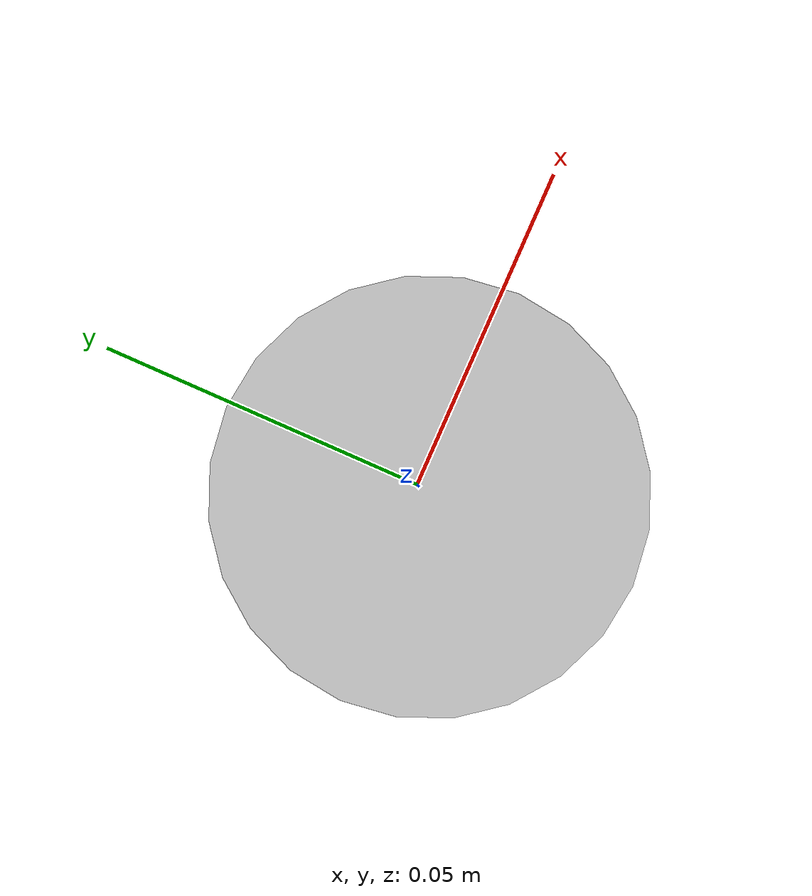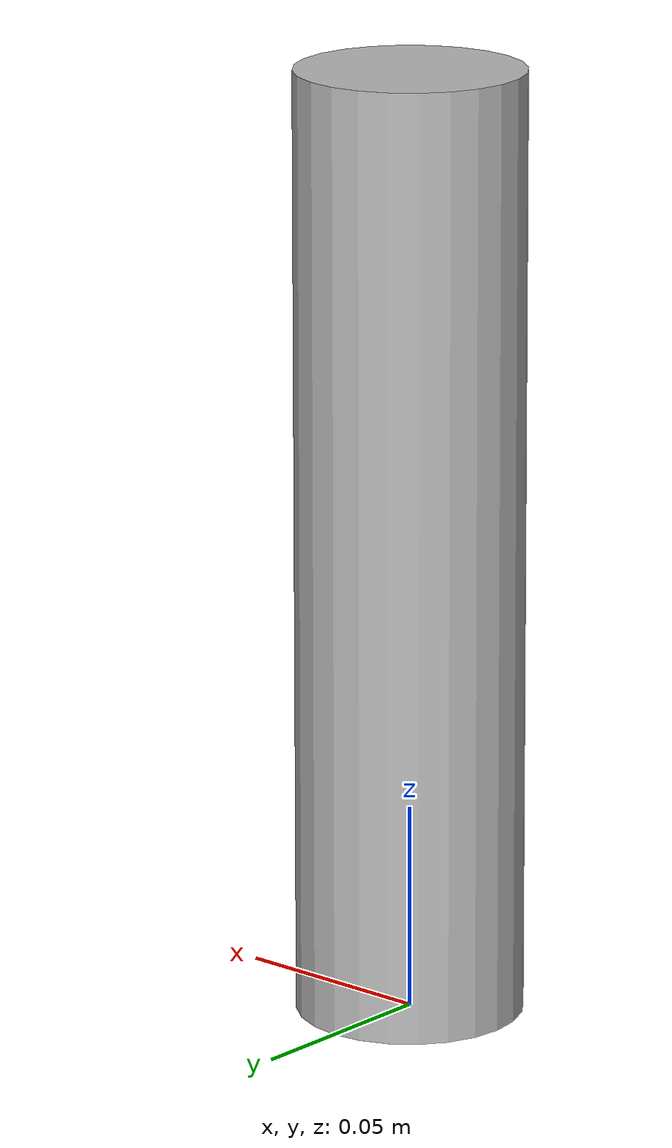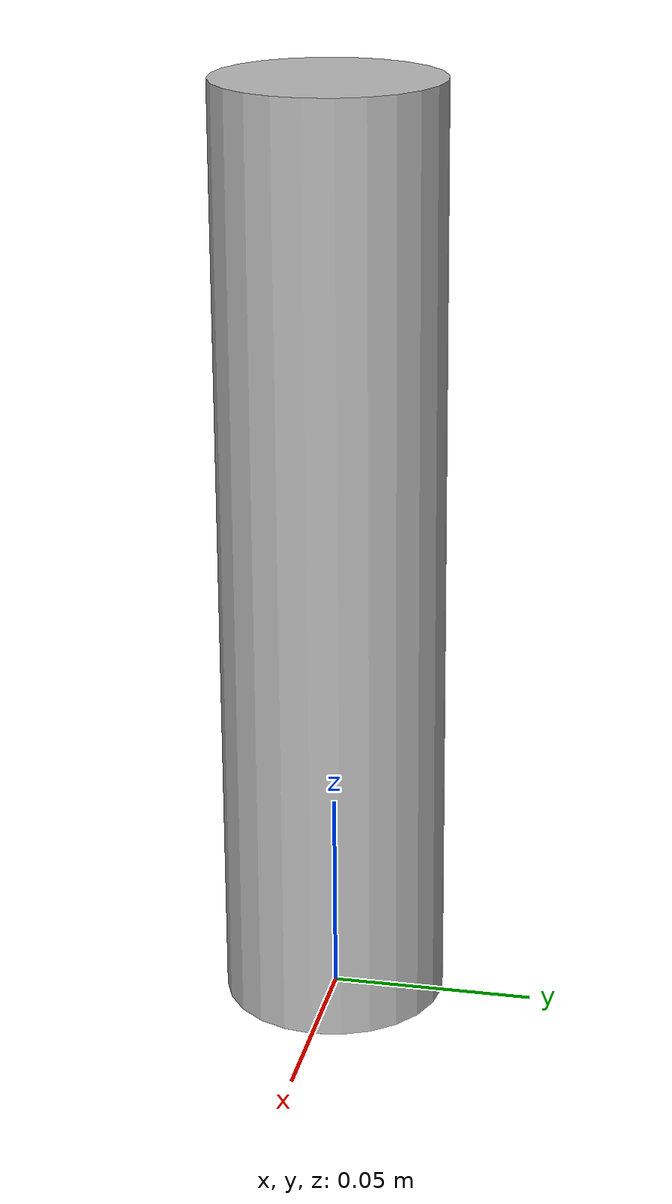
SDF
<?xml version='1.0'?>
<sdf version= '1.4'>
  <model name='can'>
    <static>1</static>
    <link name='link'>
      <pose frame=''>0 0 0.115 0 -0 0</pose>
      <inertial>
        <mass>0.39</mass>
        <inertia>
          <ixx>0.00058</ixx>
          <ixy>0</ixy>
          <ixz>0</ixz>
          <iyy>0.00058</iyy>
          <iyz>0</iyz>
          <izz>0.00019</izz>
        </inertia>
      </inertial>

      <visual name='visual'>
        <geometry>
          <cylinder>
            <radius>0.0275</radius>
            <length>0.23</length>
          </cylinder>
        </geometry>

        <material>
          <script>
            <uri>model://fuelstation/materials/scripts</uri>
            <uri>model://fuelstation/materials/textures</uri>
            <name>fuelstation2/Diffuse</name>
          </script>
        </material>
      </visual>

      <self_collide>0</self_collide>

    </link>
  </model>
</sdf>
